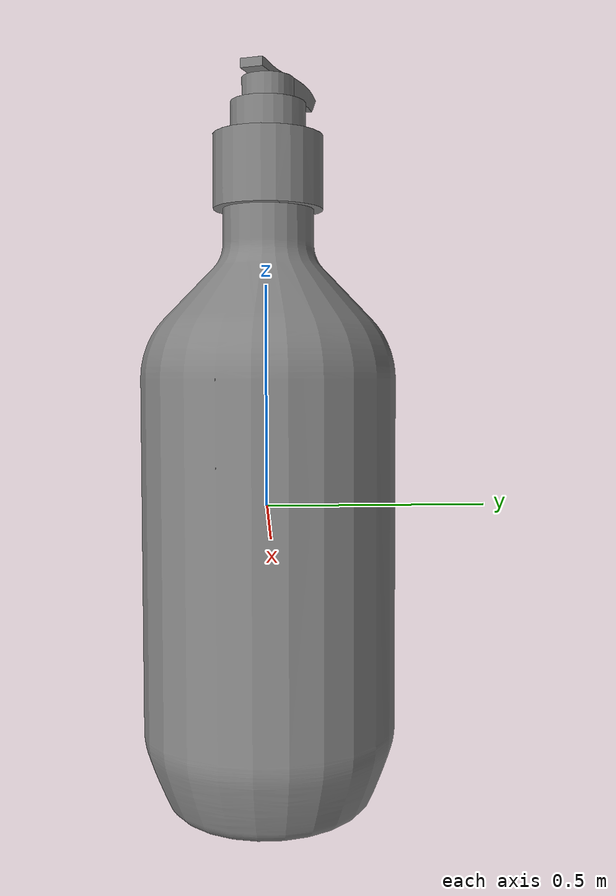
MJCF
<?xml version='1.0' encoding='UTF-8'?>
<mujoco model="partnet_2ee426dc-f596-4d61-acdf-8318ec993da3-0">
  <compiler angle="radian"/>
  <asset>
    <mesh name="original_7" content_type="model/obj" file="textured_objs/original_7.obj"/>
    <mesh name="original_10" content_type="model/obj" file="textured_objs/original_10.obj"/>
    <mesh name="original_11" content_type="model/obj" file="textured_objs/original_11.obj"/>
    <mesh name="original_8" content_type="model/obj" file="textured_objs/original_8.obj"/>
    <mesh name="original_6" content_type="model/obj" file="textured_objs/original_6.obj"/>
    <mesh name="original_4" content_type="model/obj" file="textured_objs/original_4.obj"/>
    <mesh name="original_3" content_type="model/obj" file="textured_objs/original_3.obj"/>
    <mesh name="original_2" content_type="model/obj" file="textured_objs/original_2.obj"/>
    <mesh name="original_1" content_type="model/obj" file="textured_objs/original_1.obj"/>
  </asset>
  <worldbody>
    <body name="base">
      <body name="link_2" quat="0.5 0.5 -0.5 -0.5">
        <geom type="mesh" mesh="original_4"/>
        <geom type="mesh" mesh="original_3"/>
        <geom type="mesh" mesh="original_2"/>
        <geom type="mesh" mesh="original_1"/>
        <body name="link_1_helper" pos="-0.00499357 0 0.000790016">
          <inertial pos="0 0 0" mass="1e-06" diaginertia="1e-10 1e-10 1e-10"/>
          <joint name="joint_4" pos="0 0 0" axis="0 1 0" type="slide" range="0 0.02"/>
          <body name="link_1">
            <joint name="joint_1" pos="0 0 0" axis="0 1 0"/>
            <geom pos="0.00499357 0 -0.000790016" quat="1 0 0 0" type="mesh" mesh="original_8"/>
            <geom pos="0.00499357 0 -0.000790016" quat="1 0 0 0" type="mesh" mesh="original_6"/>
            <body name="link_0_helper" pos="2.19626e-07 0 4.61781e-08">
              <inertial pos="0 0 0" mass="1e-06" diaginertia="1e-10 1e-10 1e-10"/>
              <joint name="joint_3" pos="0 0 0" axis="0 -1 0" type="slide" range="0 0.02"/>
              <body name="link_0">
                <joint name="joint_0" pos="0 0 0" axis="0 1 0"/>
                <geom pos="0.00499335 0 -0.000790062" quat="1 0 0 0" type="mesh" mesh="original_7"/>
                <geom pos="0.00499335 0 -0.000790062" quat="1 0 0 0" type="mesh" mesh="original_10"/>
                <geom pos="0.00499335 0 -0.000790062" quat="1 0 0 0" type="mesh" mesh="original_11"/>
              </body>
            </body>
          </body>
        </body>
      </body>
    </body>
  </worldbody>
</mujoco>
